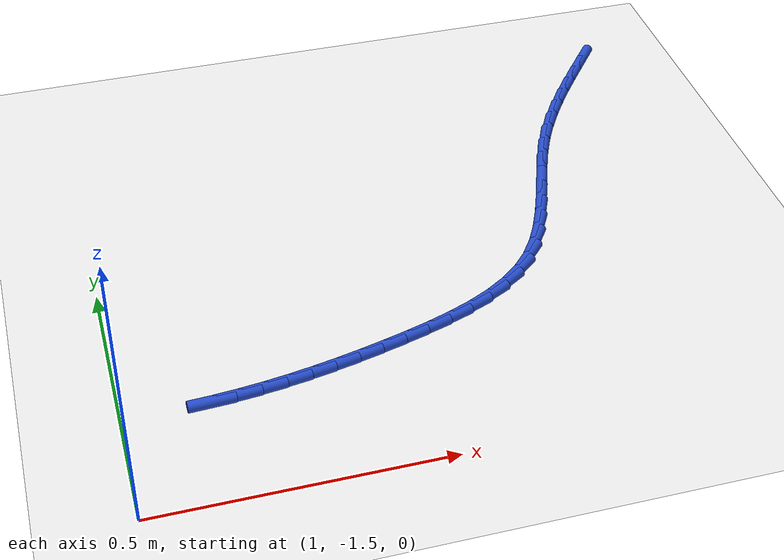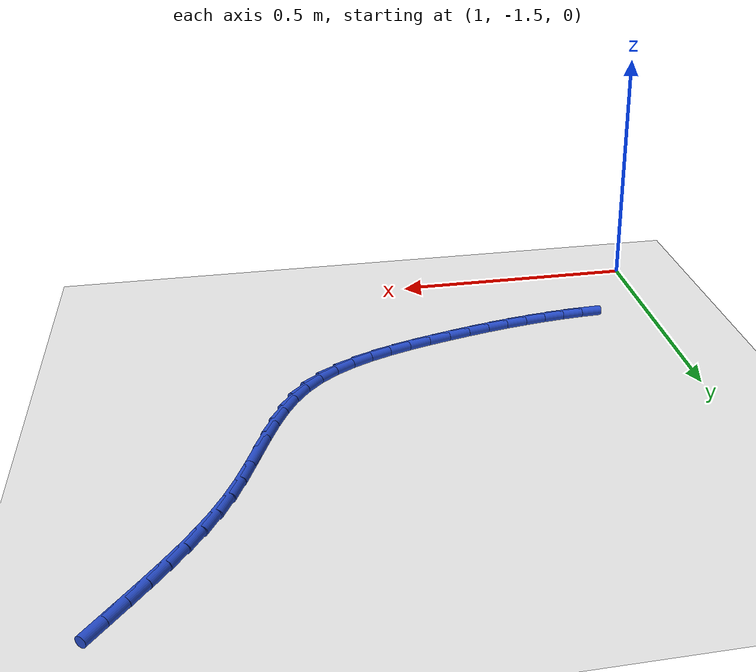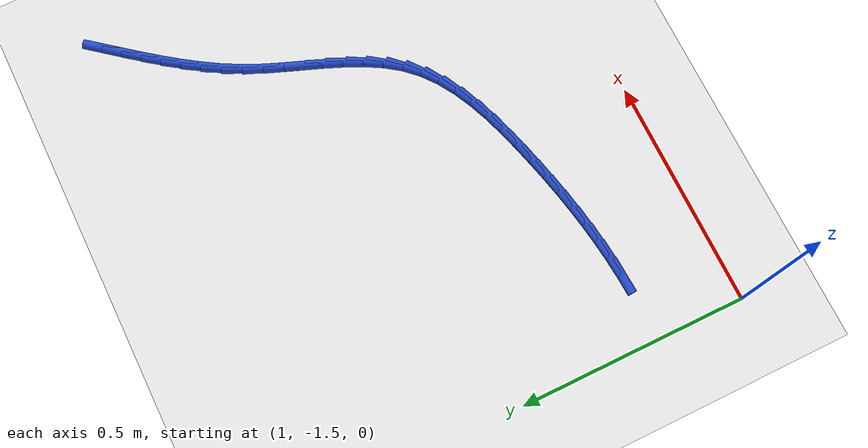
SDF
<sdf version="1.6">
 <world name="default">
  <model name="ground_plane">
   <static>1</static>
   <link name="link">
    <collision name="collision">
     <geometry><plane><normal>0 0 1</normal><size>100 100</size></plane></geometry>
     <surface><friction><ode><mu>100</mu><mu2>50</mu2></ode></friction></surface>
    </collision>
    <visual name="visual">
     <cast_shadows>0</cast_shadows>
     <geometry><plane><normal>0 0 1</normal><size>100 100</size></plane></geometry>
     <material>
      <script><uri>file://media/materials/scripts/gazebo.material</uri><name>Gazebo/WhiteGlow</name></script>
     </material>
    </visual>
   </link>
  </model>
  <model name="line">
   <link name="link_106">
    <pose>2.066881484407478 -0.538258864740386 0.01 0 1.57 0.8964026326689988</pose>
    <collision name="collision">
     <geometry><cylinder><radius>0.01</radius><length>0.08</length></cylinder></geometry>
    </collision>
    <visual name="visual">
     <material>
      <script><name>Gazebo/Blue</name><uri>file://media/materials/scripts/gazebo.material</uri></script>
     </material>
     <geometry><cylinder><radius>0.01</radius><length>0.08</length></cylinder></geometry>
    </visual>
   </link>
   <link name="link_107">
    <pose>2.039985873674087 -0.5719023208904329 0.01 0 1.57 0.9019467349954773</pose>
    <collision name="collision">
     <geometry><cylinder><radius>0.01</radius><length>0.08</length></cylinder></geometry>
    </collision>
    <visual name="visual">
     <material>
      <script><name>Gazebo/Blue</name><uri>file://media/materials/scripts/gazebo.material</uri></script>
     </material>
     <geometry><cylinder><radius>0.01</radius><length>0.08</length></cylinder></geometry>
    </visual>
   </link>
   <link name="link_108">
    <pose>2.0133224229138307 -0.6056371524067365 0.01 0 1.57 0.9173078860815255</pose>
    <collision name="collision">
     <geometry><cylinder><radius>0.01</radius><length>0.08</length></cylinder></geometry>
    </collision>
    <visual name="visual">
     <material>
      <script><name>Gazebo/Blue</name><uri>file://media/materials/scripts/gazebo.material</uri></script>
     </material>
     <geometry><cylinder><radius>0.01</radius><length>0.08</length></cylinder></geometry>
    </visual>
   </link>
   <link name="link_109">
    <pose>1.9872172010616642 -0.6397293823744444 0.01 0 1.57 0.9425055714118493</pose>
    <collision name="collision">
     <geometry><cylinder><radius>0.01</radius><length>0.08</length></cylinder></geometry>
    </collision>
    <visual name="visual">
     <material>
      <script><name>Gazebo/Blue</name><uri>file://media/materials/scripts/gazebo.material</uri></script>
     </material>
     <geometry><cylinder><radius>0.01</radius><length>0.08</length></cylinder></geometry>
    </visual>
   </link>
   <link name="link_110">
    <pose>1.9619962770525443 -0.6744450338787024 0.01 0 1.57 0.9774883059239442</pose>
    <collision name="collision">
     <geometry><cylinder><radius>0.01</radius><length>0.08</length></cylinder></geometry>
    </collision>
    <visual name="visual">
     <material>
      <script><name>Gazebo/Blue</name><uri>file://media/materials/scripts/gazebo.material</uri></script>
     </material>
     <geometry><cylinder><radius>0.01</radius><length>0.08</length></cylinder></geometry>
    </visual>
   </link>
   <link name="link_111">
    <pose>1.9379857198214239 -0.7100501300046576 0.01 0 1.57 1.0220621029664707</pose>
    <collision name="collision">
     <geometry><cylinder><radius>0.01</radius><length>0.08</length></cylinder></geometry>
    </collision>
    <visual name="visual">
     <material>
      <script><name>Gazebo/Blue</name><uri>file://media/materials/scripts/gazebo.material</uri></script>
     </material>
     <geometry><cylinder><radius>0.01</radius><length>0.08</length></cylinder></geometry>
    </visual>
   </link>
   <link name="link_112">
    <pose>1.9155115983032598 -0.7468106938374572 0.01 0 1.57 1.0757987824742243</pose>
    <collision name="collision">
     <geometry><cylinder><radius>0.01</radius><length>0.08</length></cylinder></geometry>
    </collision>
    <visual name="visual">
     <material>
      <script><name>Gazebo/Blue</name><uri>file://media/materials/scripts/gazebo.material</uri></script>
     </material>
     <geometry><cylinder><radius>0.01</radius><length>0.08</length></cylinder></geometry>
    </visual>
   </link>
   <link name="link_113">
    <pose>1.8948999814330065 -0.7849927484622483 0.01 0 1.57 1.1365842979097938</pose>
    <collision name="collision">
     <geometry><cylinder><radius>0.01</radius><length>0.08</length></cylinder></geometry>
    </collision>
    <visual name="visual">
     <material>
      <script><name>Gazebo/Blue</name><uri>file://media/materials/scripts/gazebo.material</uri></script>
     </material>
     <geometry><cylinder><radius>0.01</radius><length>0.08</length></cylinder></geometry>
    </visual>
   </link>
   <link name="link_114">
    <pose>1.8764298321855488 -0.8248223775280609 0.01 0 1.57 1.1852464850482092</pose>
    <collision name="collision">
     <geometry><cylinder><radius>0.01</radius><length>0.08</length></cylinder></geometry>
    </collision>
    <visual name="visual">
     <material>
      <script><name>Gazebo/Blue</name><uri>file://media/materials/scripts/gazebo.material</uri></script>
     </material>
     <geometry><cylinder><radius>0.01</radius><length>0.08</length></cylinder></geometry>
    </visual>
   </link>
   <link name="link_115">
    <pose>1.8597283295835954 -0.8659730406957746 0.01 0 1.57 1.2093298551438323</pose>
    <collision name="collision">
     <geometry><cylinder><radius>0.01</radius><length>0.08</length></cylinder></geometry>
    </collision>
    <visual name="visual">
     <material>
      <script><name>Gazebo/Blue</name><uri>file://media/materials/scripts/gazebo.material</uri></script>
     </material>
     <geometry><cylinder><radius>0.01</radius><length>0.08</length></cylinder></geometry>
    </visual>
   </link>
   <link name="link_116">
    <pose>1.843946732516076 -0.9077146821952827 0.01 0 1.57 1.2094196463797109</pose>
    <collision name="collision">
     <geometry><cylinder><radius>0.01</radius><length>0.08</length></cylinder></geometry>
    </collision>
    <visual name="visual">
     <material>
      <script><name>Gazebo/Blue</name><uri>file://media/materials/scripts/gazebo.material</uri></script>
     </material>
     <geometry><cylinder><radius>0.01</radius><length>0.08</length></cylinder></geometry>
    </visual>
   </link>
   <link name="link_117">
    <pose>1.8282254606156805 -0.9493080560440006 0.01 0 1.57 1.1852559080718588</pose>
    <collision name="collision">
     <geometry><cylinder><radius>0.01</radius><length>0.08</length></cylinder></geometry>
    </collision>
    <visual name="visual">
     <material>
      <script><name>Gazebo/Blue</name><uri>file://media/materials/scripts/gazebo.material</uri></script>
     </material>
     <geometry><cylinder><radius>0.01</radius><length>0.08</length></cylinder></geometry>
    </visual>
   </link>
   <link name="link_118">
    <pose>1.8117049335150985 -0.9900139162593428 0.01 0 1.57 1.135379165405212</pose>
    <collision name="collision">
     <geometry><cylinder><radius>0.01</radius><length>0.08</length></cylinder></geometry>
    </collision>
    <visual name="visual">
     <material>
      <script><name>Gazebo/Blue</name><uri>file://media/materials/scripts/gazebo.material</uri></script>
     </material>
     <geometry><cylinder><radius>0.01</radius><length>0.08</length></cylinder></geometry>
    </visual>
   </link>
   <link name="link_119">
    <pose>1.7935255708470201 -1.0290930168587238 0.01 0 1.57 1.0574418768075071</pose>
    <collision name="collision">
     <geometry><cylinder><radius>0.01</radius><length>0.08</length></cylinder></geometry>
    </collision>
    <visual name="visual">
     <material>
      <script><name>Gazebo/Blue</name><uri>file://media/materials/scripts/gazebo.material</uri></script>
     </material>
     <geometry><cylinder><radius>0.01</radius><length>0.08</length></cylinder></geometry>
    </visual>
   </link>
   <link name="link_120">
    <pose>1.772827792244134 -1.0658061118595592 0.01 0 1.57 0.9491656252080409</pose>
    <collision name="collision">
     <geometry><cylinder><radius>0.01</radius><length>0.08</length></cylinder></geometry>
    </collision>
    <visual name="visual">
     <material>
      <script><name>Gazebo/Blue</name><uri>file://media/materials/scripts/gazebo.material</uri></script>
     </material>
     <geometry><cylinder><radius>0.01</radius><length>0.08</length></cylinder></geometry>
    </visual>
   </link>
   <link name="link_121">
    <pose>1.7487520173391315 -1.0994139552792621 0.01 0 1.57 0.8110628762313752</pose>
    <collision name="collision">
     <geometry><cylinder><radius>0.01</radius><length>0.08</length></cylinder></geometry>
    </collision>
    <visual name="visual">
     <material>
      <script><name>Gazebo/Blue</name><uri>file://media/materials/scripts/gazebo.material</uri></script>
     </material>
     <geometry><cylinder><radius>0.01</radius><length>0.08</length></cylinder></geometry>
    </visual>
   </link>
   <link name="link_122">
    <pose>1.720461900732307 -1.129194773052418 0.01 0 1.57 0.6685308991023222</pose>
    <collision name="collision">
     <geometry><cylinder><radius>0.01</radius><length>0.08</length></cylinder></geometry>
    </collision>
    <visual name="visual">
     <material>
      <script><name>Gazebo/Blue</name><uri>file://media/materials/scripts/gazebo.material</uri></script>
     </material>
     <geometry><cylinder><radius>0.01</radius><length>0.08</length></cylinder></geometry>
    </visual>
   </link>
   <link name="link_123">
    <pose>1.6878363115025043 -1.1549646084388099 0.01 0 1.57 0.5495313046870609</pose>
    <collision name="collision">
     <geometry><cylinder><radius>0.01</radius><length>0.08</length></cylinder></geometry>
    </collision>
    <visual name="visual">
     <material>
      <script><name>Gazebo/Blue</name><uri>file://media/materials/scripts/gazebo.material</uri></script>
     </material>
     <geometry><cylinder><radius>0.01</radius><length>0.08</length></cylinder></geometry>
    </visual>
   </link>
   <link name="link_124">
    <pose>1.6515870565499524 -1.177165846033007 0.01 0 1.57 0.45446854875960724</pose>
    <collision name="collision">
     <geometry><cylinder><radius>0.01</radius><length>0.08</length></cylinder></geometry>
    </collision>
    <visual name="visual">
     <material>
      <script><name>Gazebo/Blue</name><uri>file://media/materials/scripts/gazebo.material</uri></script>
     </material>
     <geometry><cylinder><radius>0.01</radius><length>0.08</length></cylinder></geometry>
    </visual>
   </link>
   <link name="link_125">
    <pose>1.6124728939140864 -1.1962761761132028 0.01 0 1.57 0.3806943338408246</pose>
    <collision name="collision">
     <geometry><cylinder><radius>0.01</radius><length>0.08</length></cylinder></geometry>
    </collision>
    <visual name="visual">
     <material>
      <script><name>Gazebo/Blue</name><uri>file://media/materials/scripts/gazebo.material</uri></script>
     </material>
     <geometry><cylinder><radius>0.01</radius><length>0.08</length></cylinder></geometry>
    </visual>
   </link>
   <link name="link_126">
    <pose>1.5712525816343434 -1.2127732889575917 0.01 0 1.57 0.3253901038559883</pose>
    <collision name="collision">
     <geometry><cylinder><radius>0.01</radius><length>0.08</length></cylinder></geometry>
    </collision>
    <visual name="visual">
     <material>
      <script><name>Gazebo/Blue</name><uri>file://media/materials/scripts/gazebo.material</uri></script>
     </material>
     <geometry><cylinder><radius>0.01</radius><length>0.08</length></cylinder></geometry>
    </visual>
   </link>
   <link name="link_127">
    <pose>1.52868487775016 -1.2271348748443673 0.01 0 1.57 0.2862798093121014</pose>
    <collision name="collision">
     <geometry><cylinder><radius>0.01</radius><length>0.08</length></cylinder></geometry>
    </collision>
    <visual name="visual">
     <material>
      <script><name>Gazebo/Blue</name><uri>file://media/materials/scripts/gazebo.material</uri></script>
     </material>
     <geometry><cylinder><radius>0.01</radius><length>0.08</length></cylinder></geometry>
    </visual>
   </link>
   <link name="link_128">
    <pose>1.4855285403009733 -1.239838624051724 0.01 0 1.57 0.2615145901680319</pose>
    <collision name="collision">
     <geometry><cylinder><radius>0.01</radius><length>0.08</length></cylinder></geometry>
    </collision>
    <visual name="visual">
     <material>
      <script><name>Gazebo/Blue</name><uri>file://media/materials/scripts/gazebo.material</uri></script>
     </material>
     <geometry><cylinder><radius>0.01</radius><length>0.08</length></cylinder></geometry>
    </visual>
   </link>
   <link name="link_129">
    <pose>1.4425206315836976 -1.2513494315051663 0.01 0 1.57 0.24225334615499972</pose>
    <collision name="collision">
     <geometry><cylinder><radius>0.01</radius><length>0.08</length></cylinder></geometry>
    </collision>
    <visual name="visual">
     <material>
      <script><name>Gazebo/Blue</name><uri>file://media/materials/scripts/gazebo.material</uri></script>
     </material>
     <geometry><cylinder><radius>0.01</radius><length>0.08</length></cylinder></geometry>
    </visual>
   </link>
   <link name="link_130">
    <pose>1.399951256328291 -1.2618685929608684 0.01 0 1.57 0.22069697055961687</pose>
    <collision name="collision">
     <geometry><cylinder><radius>0.01</radius><length>0.08</length></cylinder></geometry>
    </collision>
    <visual name="visual">
     <material>
      <script><name>Gazebo/Blue</name><uri>file://media/materials/scripts/gazebo.material</uri></script>
     </material>
     <geometry><cylinder><radius>0.01</radius><length>0.08</length></cylinder></geometry>
    </visual>
   </link>
   <link name="link_131">
    <pose>1.3576906951035639 -1.2713498072926068 0.01 0 1.57 0.19666065350895828</pose>
    <collision name="collision">
     <geometry><cylinder><radius>0.01</radius><length>0.08</length></cylinder></geometry>
    </collision>
    <visual name="visual">
     <material>
      <script><name>Gazebo/Blue</name><uri>file://media/materials/scripts/gazebo.material</uri></script>
     </material>
     <geometry><cylinder><radius>0.01</radius><length>0.08</length></cylinder></geometry>
    </visual>
   </link>
   <link name="link_132">
    <pose>1.315592966090181 -1.2797371824144692 0.01 0 1.57 0.1703271666113888</pose>
    <collision name="collision">
     <geometry><cylinder><radius>0.01</radius><length>0.08</length></cylinder></geometry>
    </collision>
    <visual name="visual">
     <material>
      <script><name>Gazebo/Blue</name><uri>file://media/materials/scripts/gazebo.material</uri></script>
     </material>
     <geometry><cylinder><radius>0.01</radius><length>0.08</length></cylinder></geometry>
    </visual>
   </link>
   <link name="link_133">
    <pose>1.2735120874688062 -1.286974826240544 0.01 0 1.57 0.14194393010635162</pose>
    <collision name="collision">
     <geometry><cylinder><radius>0.01</radius><length>0.08</length></cylinder></geometry>
    </collision>
    <visual name="visual">
     <material>
      <script><name>Gazebo/Blue</name><uri>file://media/materials/scripts/gazebo.material</uri></script>
     </material>
     <geometry><cylinder><radius>0.01</radius><length>0.08</length></cylinder></geometry>
    </visual>
   </link>
   <link name="link_134">
    <pose>1.2313020774201022 -1.2930068466849198 0.01 0 1.57 0.1118181067027546</pose>
    <collision name="collision">
     <geometry><cylinder><radius>0.01</radius><length>0.08</length></cylinder></geometry>
    </collision>
    <visual name="visual">
     <material>
      <script><name>Gazebo/Blue</name><uri>file://media/materials/scripts/gazebo.material</uri></script>
     </material>
     <geometry><cylinder><radius>0.01</radius><length>0.08</length></cylinder></geometry>
    </visual>
   </link>
   <link name="link_135">
    <pose>1.1888169541247329 -1.2977773516616842 0.01 0 1.57 0.08030703009165077</pose>
    <collision name="collision">
     <geometry><cylinder><radius>0.01</radius><length>0.08</length></cylinder></geometry>
    </collision>
    <visual name="visual">
     <material>
      <script><name>Gazebo/Blue</name><uri>file://media/materials/scripts/gazebo.material</uri></script>
     </material>
     <geometry><cylinder><radius>0.01</radius><length>0.08</length></cylinder></geometry>
    </visual>
   </link>
   <link name="link_136">
    <pose>1.145910735763361 -1.3012304490849251 0.01 0 1.57 0.04777732371675186</pose>
    <collision name="collision">
     <geometry><cylinder><radius>0.01</radius><length>0.08</length></cylinder></geometry>
    </collision>
    <visual name="visual">
     <material>
      <script><name>Gazebo/Blue</name><uri>file://media/materials/scripts/gazebo.material</uri></script>
     </material>
     <geometry><cylinder><radius>0.01</radius><length>0.08</length></cylinder></geometry>
    </visual>
   </link>
  </model>
 </world>
</sdf>
